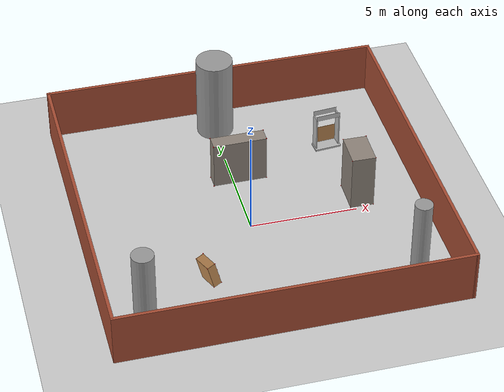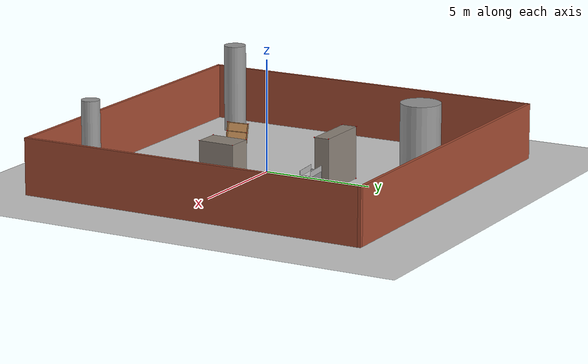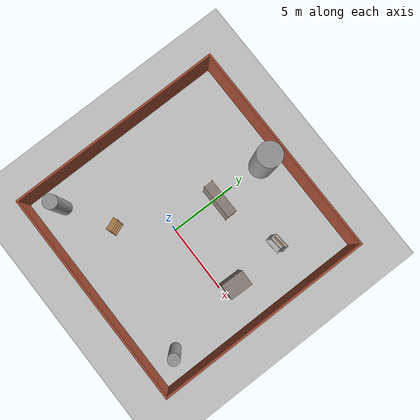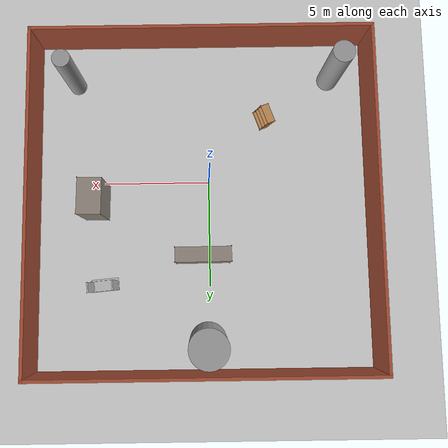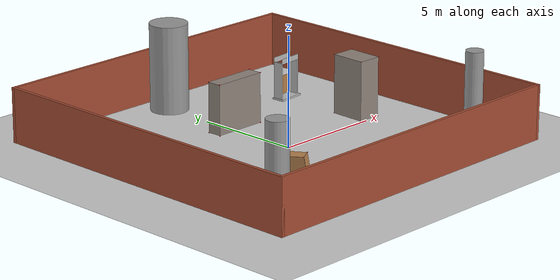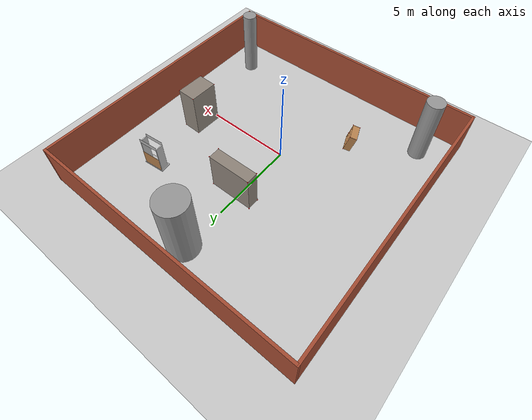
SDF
<sdf version="1.7">
 <world name="tracked_mid360_fastlio_collapse_microdeform_world">
  <model name="ground_plane">
   <static>1</static>
   <link name="link">
    <collision name="collision">
     <laser_retro>24</laser_retro>
     <geometry><plane><normal>0 0 1</normal><size>100 100</size></plane></geometry>
     <surface>
      <contact>
       <collide_bitmask>65535</collide_bitmask>
       <ode><kp>1e+06</kp><kd>10</kd><max_vel>0.05</max_vel><min_depth>0.001</min_depth></ode>
      </contact>
      <friction><ode><mu>2</mu><mu2>1.5</mu2></ode></friction>
     </surface>
     <max_contacts>20</max_contacts>
    </collision>
    <visual name="visual">
     <cast_shadows>0</cast_shadows>
     <geometry><plane><normal>0 0 1</normal><size>100 100</size></plane></geometry>
     <material>
      <script><uri>file://media/materials/scripts/gazebo.material</uri><name>Gazebo/Grey</name></script>
     </material>
    </visual>
   </link>
  </model>
  <model name="lzg_wall">
   <pose>0.279075 0.9789 0 0 -0 0</pose>
   <link name="Wall_4">
    <collision name="Wall_4_Collision">
     <laser_retro>25</laser_retro>
     <geometry><box><size>16 0.15 2.5</size></box></geometry>
     <pose>0 0 1.25 0 -0 0</pose>
    </collision>
    <visual name="Wall_4_Visual">
     <pose>0 0 1.25 0 -0 0</pose>
     <geometry><box><size>16 0.15 2.5</size></box></geometry>
     <material>
      <script><uri>file://media/materials/scripts/gazebo.material</uri><name>Gazebo/Bricks</name></script>
      <ambient>1 1 1 1</ambient>
     </material>
     <meta><layer>0</layer></meta>
    </visual>
    <pose>0 -7.925 0 0 -0 0</pose>
   </link>
   <link name="Wall_5">
    <collision name="Wall_5_Collision">
     <laser_retro>25</laser_retro>
     <geometry><box><size>16 0.15 2.5</size></box></geometry>
     <pose>0 0 1.25 0 -0 0</pose>
    </collision>
    <visual name="Wall_5_Visual">
     <pose>0 0 1.25 0 -0 0</pose>
     <geometry><box><size>16 0.15 2.5</size></box></geometry>
     <material>
      <script><uri>file://media/materials/scripts/gazebo.material</uri><name>Gazebo/Bricks</name></script>
      <ambient>1 1 1 1</ambient>
     </material>
     <meta><layer>0</layer></meta>
    </visual>
    <pose>7.925 0 0 0 -0 1.5708</pose>
   </link>
   <link name="Wall_6">
    <collision name="Wall_6_Collision">
     <laser_retro>25</laser_retro>
     <geometry><box><size>16 0.15 2.5</size></box></geometry>
     <pose>0 0 1.25 0 -0 0</pose>
    </collision>
    <visual name="Wall_6_Visual">
     <pose>0 0 1.25 0 -0 0</pose>
     <geometry><box><size>16 0.15 2.5</size></box></geometry>
     <material>
      <script><uri>file://media/materials/scripts/gazebo.material</uri><name>Gazebo/Bricks</name></script>
      <ambient>1 1 1 1</ambient>
     </material>
     <meta><layer>0</layer></meta>
    </visual>
    <pose>0 7.925 0 0 -0 3.14159</pose>
   </link>
   <link name="Wall_7">
    <collision name="Wall_7_Collision">
     <laser_retro>25</laser_retro>
     <geometry><box><size>16 0.15 2.5</size></box></geometry>
     <pose>0 0 1.25 0 -0 0</pose>
    </collision>
    <visual name="Wall_7_Visual">
     <pose>0 0 1.25 0 -0 0</pose>
     <geometry><box><size>16 0.15 2.5</size></box></geometry>
     <material>
      <script><uri>file://media/materials/scripts/gazebo.material</uri><name>Gazebo/Bricks</name></script>
      <ambient>1 1 1 1</ambient>
     </material>
     <meta><layer>0</layer></meta>
    </visual>
    <pose>-7.925 0 0 0 -0 -1.5708</pose>
   </link>
   <static>1</static>
  </model>
  <model name="frc2016_drawbridge">
   <static>1</static>
   <link name="base">
    <inertial>
     <mass>10</mass>
     <pose>0 0 1 0 -0 0</pose>
     <inertia><ixx>3.64907</ixx><ixy>0</ixy><ixz>0</ixz><iyy>4.67075</iyy><iyz>0</iyz><izz>1.66649</izz></inertia>
    </inertial>
    <visual name="platform">
     <pose>0 0 0.0425 0 -0 0</pose>
     <geometry><box><size>1.27 0.5969 0.085</size></box></geometry>
    </visual>
    <collision name="platform">
     <laser_retro>11</laser_retro>
     <pose>0 0 0.0425 0 -0 0</pose>
     <geometry><box><size>1.27 0.5969 0.085</size></box></geometry>
    </collision>
    <visual name="right_wall">
     <pose>0.55879 0.04444 0.889 0 -0 0</pose>
     <geometry><box><size>0.05715 0.45698 1.77165</size></box></geometry>
    </visual>
    <collision name="right_wall">
     <laser_retro>11</laser_retro>
     <pose>0.55879 0.04444 0.889 0 -0 0</pose>
     <geometry><box><size>0.05715 0.45698 1.77165</size></box></geometry>
    </collision>
    <visual name="left_wall">
     <pose>-0.55879 0.04444 0.889 0 -0 0</pose>
     <geometry><box><size>0.05715 0.45698 1.77165</size></box></geometry>
    </visual>
    <collision name="left_wall">
     <laser_retro>11</laser_retro>
     <pose>-0.55879 0.04444 0.889 0 -0 0</pose>
     <geometry><box><size>0.05715 0.45698 1.77165</size></box></geometry>
    </collision>
    <visual name="front_upper_wall">
     <pose>0 0.27611 1.84286 0 -0 0</pose>
     <geometry><box><size>1.1557 0.006347 0.254</size></box></geometry>
    </visual>
    <collision name="front_upper_wall">
     <laser_retro>11</laser_retro>
     <pose>0 0.27611 1.84286 0 -0 0</pose>
     <geometry><box><size>1.1557 0.006347 0.254</size></box></geometry>
    </collision>
    <visual name="back_upper_wall">
     <pose>0 -0.18722 1.84286 0 -0 0</pose>
     <geometry><box><size>1.1557 0.006347 0.254</size></box></geometry>
    </visual>
    <collision name="back_upper_wall">
     <laser_retro>11</laser_retro>
     <pose>0 -0.18722 1.84286 0 -0 0</pose>
     <geometry><box><size>1.1557 0.006347 0.254</size></box></geometry>
    </collision>
   </link>
   <link name="bridge">
    <pose>0 0.28245 0.50577 0 -0 0</pose>
    <inertial>
     <mass>2</mass>
     <pose>0 -0.28245 -0.50577 0 -0 0</pose>
     <inertia>
      <ixx>0.139361</ixx>
      <ixy>0</ixy>
      <ixz>0</ixz>
      <iyy>0.357088</iyy>
      <iyz>0</iyz>
      <izz>0.217741</izz>
     </inertia>
    </inertial>
    <visual name="visual">
     <geometry><box><size>1.14298 0.006347 0.9144</size></box></geometry>
     <material><script><name>Gazebo/WoodFloor</name><uri>__default__</uri></script></material>
    </visual>
    <collision name="collision">
     <laser_retro>11</laser_retro>
     <geometry><box><size>1.14298 0.006347 0.9144</size></box></geometry>
    </collision>
   </link>
   <joint name="bridge_joint" type="revolute">
    <pose>0 0 -0.4172 0 -0 0</pose>
    <parent>base</parent>
    <child>bridge</child>
    <axis>
     <xyz>1 0 0</xyz>
     <limit><lower>-2</lower><upper>0</upper></limit>
     <dynamics><spring_reference>0</spring_reference><spring_stiffness>0</spring_stiffness></dynamics>
    </axis>
   </joint>
   <pose>4.97332 4.86156 -2.9e-05 0 -0 0.089143</pose>
  </model>
  <model name="bookshelf">
   <static>0</static>
   <link name="link">
    <inertial>
     <mass>1</mass>
     <inertia><ixx>1</ixx><ixy>0</ixy><ixz>0</ixz><iyy>1</iyy><iyz>0</iyz><izz>1</izz></inertia>
    </inertial>
    <collision name="back">
     <laser_retro>10</laser_retro>
     <pose>0 0.005 0.6 0 -0 0</pose>
     <geometry><box><size>0.9 0.01 1.2</size></box></geometry>
    </collision>
    <visual name="visual1">
     <pose>0 0.005 0.6 0 -0 0</pose>
     <geometry><box><size>0.9 0.01 1.2</size></box></geometry>
     <material>
      <script><uri>file://media/materials/scripts/gazebo.material</uri><name>Gazebo/Wood</name></script>
     </material>
    </visual>
    <collision name="left_side">
     <laser_retro>10</laser_retro>
     <pose>0.45 -0.195 0.6 0 -0 0</pose>
     <geometry><box><size>0.02 0.4 1.2</size></box></geometry>
    </collision>
    <visual name="visual2">
     <pose>0.45 -0.195 0.6 0 -0 0</pose>
     <geometry><box><size>0.02 0.4 1.2</size></box></geometry>
     <material>
      <script><uri>file://media/materials/scripts/gazebo.material</uri><name>Gazebo/Wood</name></script>
     </material>
    </visual>
    <collision name="right_side">
     <laser_retro>10</laser_retro>
     <pose>-0.45 -0.195 0.6 0 -0 0</pose>
     <geometry><box><size>0.02 0.4 1.2</size></box></geometry>
    </collision>
    <visual name="visual3">
     <pose>-0.45 -0.195 0.6 0 -0 0</pose>
     <geometry><box><size>0.02 0.4 1.2</size></box></geometry>
     <material>
      <script><uri>file://media/materials/scripts/gazebo.material</uri><name>Gazebo/Wood</name></script>
     </material>
    </visual>
    <collision name="bottom">
     <laser_retro>10</laser_retro>
     <pose>0 -0.195 0.03 0 -0 0</pose>
     <geometry><box><size>0.88 0.4 0.06</size></box></geometry>
    </collision>
    <visual name="visual4">
     <pose>0 -0.195 0.03 0 -0 0</pose>
     <geometry><box><size>0.88 0.4 0.06</size></box></geometry>
     <material>
      <script><uri>file://media/materials/scripts/gazebo.material</uri><name>Gazebo/Wood</name></script>
     </material>
    </visual>
    <collision name="top">
     <laser_retro>10</laser_retro>
     <pose>0 -0.195 1.19 0 -0 0</pose>
     <geometry><box><size>0.88 0.4 0.02</size></box></geometry>
    </collision>
    <visual name="visual5">
     <pose>0 -0.195 1.19 0 -0 0</pose>
     <geometry><box><size>0.88 0.4 0.02</size></box></geometry>
     <material>
      <script><uri>file://media/materials/scripts/gazebo.material</uri><name>Gazebo/Wood</name></script>
     </material>
    </visual>
    <collision name="low_shelf">
     <laser_retro>10</laser_retro>
     <pose>0 -0.195 0.43 0 -0 0</pose>
     <geometry><box><size>0.88 0.4 0.02</size></box></geometry>
    </collision>
    <visual name="visual6">
     <pose>0 -0.195 0.43 0 -0 0</pose>
     <geometry><box><size>0.88 0.4 0.02</size></box></geometry>
     <material>
      <script><uri>file://media/materials/scripts/gazebo.material</uri><name>Gazebo/Wood</name></script>
     </material>
    </visual>
    <collision name="high_shelf">
     <laser_retro>10</laser_retro>
     <pose>0 -0.195 0.8 0 -0 0</pose>
     <geometry><box><size>0.88 0.4 0.02</size></box></geometry>
    </collision>
    <visual name="visual7">
     <pose>0 -0.195 0.8 0 -0 0</pose>
     <geometry><box><size>0.88 0.4 0.02</size></box></geometry>
     <material>
      <script><uri>file://media/materials/scripts/gazebo.material</uri><name>Gazebo/Wood</name></script>
     </material>
    </visual>
    <visual name="ground_truth_marker_v_000">
     <pose>-0.46 -0.395 0 0 -0 0</pose>
     <geometry><sphere><radius>0.02</radius></sphere></geometry>
     <material><ambient>1 0 0 1</ambient><diffuse>1 0 0 1</diffuse><emissive>1 0 0 1</emissive></material>
     <cast_shadows>0</cast_shadows>
    </visual>
    <visual name="ground_truth_marker_v_001">
     <pose>-0.46 -0.395 1.2 0 -0 0</pose>
     <geometry><sphere><radius>0.02</radius></sphere></geometry>
     <material><ambient>1 0 0 1</ambient><diffuse>1 0 0 1</diffuse><emissive>1 0 0 1</emissive></material>
     <cast_shadows>0</cast_shadows>
    </visual>
    <visual name="ground_truth_marker_v_002">
     <pose>0.46 -0.395 0 0 -0 0</pose>
     <geometry><sphere><radius>0.02</radius></sphere></geometry>
     <material><ambient>1 0 0 1</ambient><diffuse>1 0 0 1</diffuse><emissive>1 0 0 1</emissive></material>
     <cast_shadows>0</cast_shadows>
    </visual>
    <visual name="ground_truth_marker_v_003">
     <pose>0.46 -0.395 1.2 0 -0 0</pose>
     <geometry><sphere><radius>0.02</radius></sphere></geometry>
     <material><ambient>1 0 0 1</ambient><diffuse>1 0 0 1</diffuse><emissive>1 0 0 1</emissive></material>
     <cast_shadows>0</cast_shadows>
    </visual>
    <visual name="ground_truth_marker_v_004">
     <pose>-0.45 0.01 0 0 -0 0</pose>
     <geometry><sphere><radius>0.02</radius></sphere></geometry>
     <material><ambient>1 0 0 1</ambient><diffuse>1 0 0 1</diffuse><emissive>1 0 0 1</emissive></material>
     <cast_shadows>0</cast_shadows>
    </visual>
    <visual name="ground_truth_marker_v_005">
     <pose>-0.45 0.01 1.2 0 -0 0</pose>
     <geometry><sphere><radius>0.02</radius></sphere></geometry>
     <material><ambient>1 0 0 1</ambient><diffuse>1 0 0 1</diffuse><emissive>1 0 0 1</emissive></material>
     <cast_shadows>0</cast_shadows>
    </visual>
    <visual name="ground_truth_marker_v_006">
     <pose>0.45 0.01 0 0 -0 0</pose>
     <geometry><sphere><radius>0.02</radius></sphere></geometry>
     <material><ambient>1 0 0 1</ambient><diffuse>1 0 0 1</diffuse><emissive>1 0 0 1</emissive></material>
     <cast_shadows>0</cast_shadows>
    </visual>
    <visual name="ground_truth_marker_v_007">
     <pose>0.45 0.01 1.2 0 -0 0</pose>
     <geometry><sphere><radius>0.02</radius></sphere></geometry>
     <material><ambient>1 0 0 1</ambient><diffuse>1 0 0 1</diffuse><emissive>1 0 0 1</emissive></material>
     <cast_shadows>0</cast_shadows>
    </visual>
    <visual name="ground_truth_marker_v_008">
     <pose>-0.44 -0.395 0.42 0 -0 0</pose>
     <geometry><sphere><radius>0.02</radius></sphere></geometry>
     <material><ambient>1 0 0 1</ambient><diffuse>1 0 0 1</diffuse><emissive>1 0 0 1</emissive></material>
     <cast_shadows>0</cast_shadows>
    </visual>
    <visual name="ground_truth_marker_v_009">
     <pose>-0.44 -0.395 0.44 0 -0 0</pose>
     <geometry><sphere><radius>0.02</radius></sphere></geometry>
     <material><ambient>1 0 0 1</ambient><diffuse>1 0 0 1</diffuse><emissive>1 0 0 1</emissive></material>
     <cast_shadows>0</cast_shadows>
    </visual>
    <visual name="ground_truth_marker_v_010">
     <pose>0.44 -0.395 0.42 0 -0 0</pose>
     <geometry><sphere><radius>0.02</radius></sphere></geometry>
     <material><ambient>1 0 0 1</ambient><diffuse>1 0 0 1</diffuse><emissive>1 0 0 1</emissive></material>
     <cast_shadows>0</cast_shadows>
    </visual>
    <visual name="ground_truth_marker_v_011">
     <pose>0.44 -0.395 0.44 0 -0 0</pose>
     <geometry><sphere><radius>0.02</radius></sphere></geometry>
     <material><ambient>1 0 0 1</ambient><diffuse>1 0 0 1</diffuse><emissive>1 0 0 1</emissive></material>
     <cast_shadows>0</cast_shadows>
    </visual>
    <visual name="ground_truth_marker_v_012">
     <pose>-0.44 -0.395 0.79 0 -0 0</pose>
     <geometry><sphere><radius>0.02</radius></sphere></geometry>
     <material><ambient>1 0 0 1</ambient><diffuse>1 0 0 1</diffuse><emissive>1 0 0 1</emissive></material>
     <cast_shadows>0</cast_shadows>
    </visual>
    <visual name="ground_truth_marker_v_013">
     <pose>-0.44 -0.395 0.81 0 -0 0</pose>
     <geometry><sphere><radius>0.02</radius></sphere></geometry>
     <material><ambient>1 0 0 1</ambient><diffuse>1 0 0 1</diffuse><emissive>1 0 0 1</emissive></material>
     <cast_shadows>0</cast_shadows>
    </visual>
    <visual name="ground_truth_marker_v_014">
     <pose>0.44 -0.395 0.79 0 -0 0</pose>
     <geometry><sphere><radius>0.02</radius></sphere></geometry>
     <material><ambient>1 0 0 1</ambient><diffuse>1 0 0 1</diffuse><emissive>1 0 0 1</emissive></material>
     <cast_shadows>0</cast_shadows>
    </visual>
    <visual name="ground_truth_marker_v_015">
     <pose>0.44 -0.395 0.81 0 -0 0</pose>
     <geometry><sphere><radius>0.02</radius></sphere></geometry>
     <material><ambient>1 0 0 1</ambient><diffuse>1 0 0 1</diffuse><emissive>1 0 0 1</emissive></material>
     <cast_shadows>0</cast_shadows>
    </visual>
    <kinematic>1</kinematic>
   </link>
   <link name="ground_truth_v_000">
    <pose>-0.46 -0.395 0 0 -0 0</pose>
    <inertial>
     <mass>1e-06</mass>
     <inertia><ixx>1e-12</ixx><ixy>0</ixy><ixz>0</ixz><iyy>1e-12</iyy><iyz>0</iyz><izz>1e-12</izz></inertia>
    </inertial>
   </link>
   <link name="ground_truth_v_001">
    <pose>-0.46 -0.395 1.2 0 -0 0</pose>
    <inertial>
     <mass>1e-06</mass>
     <inertia><ixx>1e-12</ixx><ixy>0</ixy><ixz>0</ixz><iyy>1e-12</iyy><iyz>0</iyz><izz>1e-12</izz></inertia>
    </inertial>
   </link>
   <link name="ground_truth_v_002">
    <pose>0.46 -0.395 0 0 -0 0</pose>
    <inertial>
     <mass>1e-06</mass>
     <inertia><ixx>1e-12</ixx><ixy>0</ixy><ixz>0</ixz><iyy>1e-12</iyy><iyz>0</iyz><izz>1e-12</izz></inertia>
    </inertial>
   </link>
   <link name="ground_truth_v_003">
    <pose>0.46 -0.395 1.2 0 -0 0</pose>
    <inertial>
     <mass>1e-06</mass>
     <inertia><ixx>1e-12</ixx><ixy>0</ixy><ixz>0</ixz><iyy>1e-12</iyy><iyz>0</iyz><izz>1e-12</izz></inertia>
    </inertial>
   </link>
   <link name="ground_truth_v_004">
    <pose>-0.45 0.01 0 0 -0 0</pose>
    <inertial>
     <mass>1e-06</mass>
     <inertia><ixx>1e-12</ixx><ixy>0</ixy><ixz>0</ixz><iyy>1e-12</iyy><iyz>0</iyz><izz>1e-12</izz></inertia>
    </inertial>
   </link>
   <link name="ground_truth_v_005">
    <pose>-0.45 0.01 1.2 0 -0 0</pose>
    <inertial>
     <mass>1e-06</mass>
     <inertia><ixx>1e-12</ixx><ixy>0</ixy><ixz>0</ixz><iyy>1e-12</iyy><iyz>0</iyz><izz>1e-12</izz></inertia>
    </inertial>
   </link>
   <link name="ground_truth_v_006">
    <pose>0.45 0.01 0 0 -0 0</pose>
    <inertial>
     <mass>1e-06</mass>
     <inertia><ixx>1e-12</ixx><ixy>0</ixy><ixz>0</ixz><iyy>1e-12</iyy><iyz>0</iyz><izz>1e-12</izz></inertia>
    </inertial>
   </link>
   <link name="ground_truth_v_007">
    <pose>0.45 0.01 1.2 0 -0 0</pose>
    <inertial>
     <mass>1e-06</mass>
     <inertia><ixx>1e-12</ixx><ixy>0</ixy><ixz>0</ixz><iyy>1e-12</iyy><iyz>0</iyz><izz>1e-12</izz></inertia>
    </inertial>
   </link>
   <link name="ground_truth_v_008">
    <pose>-0.44 -0.395 0.42 0 -0 0</pose>
    <inertial>
     <mass>1e-06</mass>
     <inertia><ixx>1e-12</ixx><ixy>0</ixy><ixz>0</ixz><iyy>1e-12</iyy><iyz>0</iyz><izz>1e-12</izz></inertia>
    </inertial>
   </link>
   <link name="ground_truth_v_009">
    <pose>-0.44 -0.395 0.44 0 -0 0</pose>
    <inertial>
     <mass>1e-06</mass>
     <inertia><ixx>1e-12</ixx><ixy>0</ixy><ixz>0</ixz><iyy>1e-12</iyy><iyz>0</iyz><izz>1e-12</izz></inertia>
    </inertial>
   </link>
   <link name="ground_truth_v_010">
    <pose>0.44 -0.395 0.42 0 -0 0</pose>
    <inertial>
     <mass>1e-06</mass>
     <inertia><ixx>1e-12</ixx><ixy>0</ixy><ixz>0</ixz><iyy>1e-12</iyy><iyz>0</iyz><izz>1e-12</izz></inertia>
    </inertial>
   </link>
   <link name="ground_truth_v_011">
    <pose>0.44 -0.395 0.44 0 -0 0</pose>
    <inertial>
     <mass>1e-06</mass>
     <inertia><ixx>1e-12</ixx><ixy>0</ixy><ixz>0</ixz><iyy>1e-12</iyy><iyz>0</iyz><izz>1e-12</izz></inertia>
    </inertial>
   </link>
   <link name="ground_truth_v_012">
    <pose>-0.44 -0.395 0.79 0 -0 0</pose>
    <inertial>
     <mass>1e-06</mass>
     <inertia><ixx>1e-12</ixx><ixy>0</ixy><ixz>0</ixz><iyy>1e-12</iyy><iyz>0</iyz><izz>1e-12</izz></inertia>
    </inertial>
   </link>
   <link name="ground_truth_v_013">
    <pose>-0.44 -0.395 0.81 0 -0 0</pose>
    <inertial>
     <mass>1e-06</mass>
     <inertia><ixx>1e-12</ixx><ixy>0</ixy><ixz>0</ixz><iyy>1e-12</iyy><iyz>0</iyz><izz>1e-12</izz></inertia>
    </inertial>
   </link>
   <link name="ground_truth_v_014">
    <pose>0.44 -0.395 0.79 0 -0 0</pose>
    <inertial>
     <mass>1e-06</mass>
     <inertia><ixx>1e-12</ixx><ixy>0</ixy><ixz>0</ixz><iyy>1e-12</iyy><iyz>0</iyz><izz>1e-12</izz></inertia>
    </inertial>
   </link>
   <link name="ground_truth_v_015">
    <pose>0.44 -0.395 0.81 0 -0 0</pose>
    <inertial>
     <mass>1e-06</mass>
     <inertia><ixx>1e-12</ixx><ixy>0</ixy><ixz>0</ixz><iyy>1e-12</iyy><iyz>0</iyz><izz>1e-12</izz></inertia>
    </inertial>
   </link>
   <joint name="ground_truth_v_000_fixed_joint" type="fixed">
    <parent>link</parent>
    <child>ground_truth_v_000</child>
   </joint>
   <joint name="ground_truth_v_001_fixed_joint" type="fixed">
    <parent>link</parent>
    <child>ground_truth_v_001</child>
   </joint>
   <joint name="ground_truth_v_002_fixed_joint" type="fixed">
    <parent>link</parent>
    <child>ground_truth_v_002</child>
   </joint>
   <joint name="ground_truth_v_003_fixed_joint" type="fixed">
    <parent>link</parent>
    <child>ground_truth_v_003</child>
   </joint>
   <joint name="ground_truth_v_004_fixed_joint" type="fixed">
    <parent>link</parent>
    <child>ground_truth_v_004</child>
   </joint>
   <joint name="ground_truth_v_005_fixed_joint" type="fixed">
    <parent>link</parent>
    <child>ground_truth_v_005</child>
   </joint>
   <joint name="ground_truth_v_006_fixed_joint" type="fixed">
    <parent>link</parent>
    <child>ground_truth_v_006</child>
   </joint>
   <joint name="ground_truth_v_007_fixed_joint" type="fixed">
    <parent>link</parent>
    <child>ground_truth_v_007</child>
   </joint>
   <joint name="ground_truth_v_008_fixed_joint" type="fixed">
    <parent>link</parent>
    <child>ground_truth_v_008</child>
   </joint>
   <joint name="ground_truth_v_009_fixed_joint" type="fixed">
    <parent>link</parent>
    <child>ground_truth_v_009</child>
   </joint>
   <joint name="ground_truth_v_010_fixed_joint" type="fixed">
    <parent>link</parent>
    <child>ground_truth_v_010</child>
   </joint>
   <joint name="ground_truth_v_011_fixed_joint" type="fixed">
    <parent>link</parent>
    <child>ground_truth_v_011</child>
   </joint>
   <joint name="ground_truth_v_012_fixed_joint" type="fixed">
    <parent>link</parent>
    <child>ground_truth_v_012</child>
   </joint>
   <joint name="ground_truth_v_013_fixed_joint" type="fixed">
    <parent>link</parent>
    <child>ground_truth_v_013</child>
   </joint>
   <joint name="ground_truth_v_014_fixed_joint" type="fixed">
    <parent>link</parent>
    <child>ground_truth_v_014</child>
   </joint>
   <joint name="ground_truth_v_015_fixed_joint" type="fixed">
    <parent>link</parent>
    <child>ground_truth_v_015</child>
   </joint>
   <pose>-2.73269 -3.15697 0 -0.229313 0.074467 1.93675</pose>
  </model>
  <model name="lzg_three_zhuzi">
   <link name="link_2">
    <inertial>
     <mass>2.62922</mass>
     <inertia><ixx>3.61255</ixx><ixy>0</ixy><ixz>0</ixz><iyy>3.61255</iyy><iyz>0</iyz><izz>0.216046</izz></inertia>
    </inertial>
    <pose>6.19023 -4.08731 0.013797 0 -0 0</pose>
    <visual name="visual">
     <geometry><cylinder><radius>0.405391</radius><length>3.99937</length></cylinder></geometry>
     <material>
      <lighting>1</lighting>
      <script><uri>file://media/materials/scripts/gazebo.material</uri><name>Gazebo/Grey</name></script>
      <shader type="pixel"/>
     </material>
    </visual>
    <collision name="collision">
     <laser_retro>16</laser_retro>
     <geometry><cylinder><radius>0.405391</radius><length>3.99937</length></cylinder></geometry>
     <surface>
      <friction>
       <ode><mu>1</mu><mu2>1</mu2><fdir1>0 0 0</fdir1><slip1>0</slip1><slip2>0</slip2></ode>
       <torsional>
        <coefficient>1</coefficient>
        <patch_radius>0</patch_radius>
        <surface_radius>0</surface_radius>
        <use_patch_radius>1</use_patch_radius>
        <ode><slip>0</slip></ode>
       </torsional>
      </friction>
      <bounce><restitution_coefficient>0</restitution_coefficient><threshold>1e+06</threshold></bounce>
      <contact>
       <collide_without_contact>0</collide_without_contact>
       <collide_without_contact_bitmask>1</collide_without_contact_bitmask>
       <collide_bitmask>1</collide_bitmask>
       <ode>
        <soft_cfm>0</soft_cfm>
        <soft_erp>0.2</soft_erp>
        <kp>1e+13</kp>
        <kd>1</kd>
        <max_vel>0.01</max_vel>
        <min_depth>0</min_depth>
       </ode>
       <bullet>
        <split_impulse>1</split_impulse>
        <split_impulse_penetration_threshold>-0.01</split_impulse_penetration_threshold>
        <soft_cfm>0</soft_cfm>
        <soft_erp>0.2</soft_erp>
        <kp>1e+13</kp>
        <kd>1</kd>
       </bullet>
      </contact>
     </surface>
    </collision>
   </link>
   <link name="link_3">
    <inertial>
     <mass>3.987</mass>
     <inertia><ixx>5.53074</ixx><ixy>0</ixy><ixz>0</ixz><iyy>5.53074</iyy><iyz>0</iyz><izz>0.498376</izz></inertia>
    </inertial>
    <pose>-6.12607 -4.24219 -0.006898 0 -0 0</pose>
    <visual name="visual">
     <geometry><cylinder><radius>0.5</radius><length>3.98702</length></cylinder></geometry>
     <material>
      <lighting>1</lighting>
      <script><uri>file://media/materials/scripts/gazebo.material</uri><name>Gazebo/Grey</name></script>
      <shader type="pixel"/>
     </material>
    </visual>
    <collision name="collision">
     <laser_retro>16</laser_retro>
     <geometry><cylinder><radius>0.5</radius><length>3.98702</length></cylinder></geometry>
     <surface>
      <friction>
       <ode><mu>1</mu><mu2>1</mu2><fdir1>0 0 0</fdir1><slip1>0</slip1><slip2>0</slip2></ode>
       <torsional>
        <coefficient>1</coefficient>
        <patch_radius>0</patch_radius>
        <surface_radius>0</surface_radius>
        <use_patch_radius>1</use_patch_radius>
        <ode><slip>0</slip></ode>
       </torsional>
      </friction>
      <bounce><restitution_coefficient>0</restitution_coefficient><threshold>1e+06</threshold></bounce>
      <contact>
       <collide_without_contact>0</collide_without_contact>
       <collide_without_contact_bitmask>1</collide_without_contact_bitmask>
       <collide_bitmask>1</collide_bitmask>
       <ode>
        <soft_cfm>0</soft_cfm>
        <soft_erp>0.2</soft_erp>
        <kp>1e+13</kp>
        <kd>1</kd>
        <max_vel>0.01</max_vel>
        <min_depth>0</min_depth>
       </ode>
       <bullet>
        <split_impulse>1</split_impulse>
        <split_impulse_penetration_threshold>-0.01</split_impulse_penetration_threshold>
        <soft_cfm>0</soft_cfm>
        <soft_erp>0.2</soft_erp>
        <kp>1e+13</kp>
        <kd>1</kd>
       </bullet>
      </contact>
     </surface>
    </collision>
   </link>
   <link name="link_4">
    <inertial>
     <mass>12.4423</mass>
     <inertia><ixx>19.7027</ixx><ixy>0</ixy><ixz>0</ixz><iyy>19.7027</iyy><iyz>0</iyz><izz>4.73222</izz></inertia>
    </inertial>
    <pose>-0.064156 8.3295 -0.006898 0 -0 0</pose>
    <visual name="visual">
     <geometry><cylinder><radius>0.872163</radius><length>4.08905</length></cylinder></geometry>
     <material>
      <lighting>1</lighting>
      <script><uri>file://media/materials/scripts/gazebo.material</uri><name>Gazebo/Grey</name></script>
      <shader type="pixel"/>
     </material>
    </visual>
    <collision name="collision">
     <laser_retro>16</laser_retro>
     <geometry><cylinder><radius>0.872163</radius><length>4.08905</length></cylinder></geometry>
     <surface>
      <friction>
       <ode><mu>1</mu><mu2>1</mu2><fdir1>0 0 0</fdir1><slip1>0</slip1><slip2>0</slip2></ode>
       <torsional>
        <coefficient>1</coefficient>
        <patch_radius>0</patch_radius>
        <surface_radius>0</surface_radius>
        <use_patch_radius>1</use_patch_radius>
        <ode><slip>0</slip></ode>
       </torsional>
      </friction>
      <bounce><restitution_coefficient>0</restitution_coefficient><threshold>1e+06</threshold></bounce>
      <contact>
       <collide_without_contact>0</collide_without_contact>
       <collide_without_contact_bitmask>1</collide_without_contact_bitmask>
       <collide_bitmask>1</collide_bitmask>
       <ode>
        <soft_cfm>0</soft_cfm>
        <soft_erp>0.2</soft_erp>
        <kp>1e+13</kp>
        <kd>1</kd>
        <max_vel>0.01</max_vel>
        <min_depth>0</min_depth>
       </ode>
       <bullet>
        <split_impulse>1</split_impulse>
        <split_impulse_penetration_threshold>-0.01</split_impulse_penetration_threshold>
        <soft_cfm>0</soft_cfm>
        <soft_erp>0.2</soft_erp>
        <kp>1e+13</kp>
        <kd>1</kd>
       </bullet>
      </contact>
     </surface>
    </collision>
   </link>
   <static>1</static>
   <allow_auto_disable>0</allow_auto_disable>
   <pose>0.1888 -0.82606 1.98588 0 -0 0</pose>
  </model>
  <model name="model_02">
   <link name="link">
    <visual name="ground_truth_marker_v_000">
     <pose>-0.55 -0.816605 -1.37167 0 -0 0</pose>
     <geometry><sphere><radius>0.02</radius></sphere></geometry>
     <material><ambient>1 0 0 1</ambient><diffuse>1 0 0 1</diffuse><emissive>1 0 0 1</emissive></material>
     <cast_shadows>0</cast_shadows>
    </visual>
    <visual name="ground_truth_marker_v_001">
     <pose>-0.55 -0.816605 1.37167 0 -0 0</pose>
     <geometry><sphere><radius>0.02</radius></sphere></geometry>
     <material><ambient>1 0 0 1</ambient><diffuse>1 0 0 1</diffuse><emissive>1 0 0 1</emissive></material>
     <cast_shadows>0</cast_shadows>
    </visual>
    <visual name="ground_truth_marker_v_002">
     <pose>-0.55 0.816605 -1.37167 0 -0 0</pose>
     <geometry><sphere><radius>0.02</radius></sphere></geometry>
     <material><ambient>1 0 0 1</ambient><diffuse>1 0 0 1</diffuse><emissive>1 0 0 1</emissive></material>
     <cast_shadows>0</cast_shadows>
    </visual>
    <visual name="ground_truth_marker_v_003">
     <pose>-0.55 0.816605 1.37167 0 -0 0</pose>
     <geometry><sphere><radius>0.02</radius></sphere></geometry>
     <material><ambient>1 0 0 1</ambient><diffuse>1 0 0 1</diffuse><emissive>1 0 0 1</emissive></material>
     <cast_shadows>0</cast_shadows>
    </visual>
    <visual name="ground_truth_marker_v_004">
     <pose>0.55 -0.816605 -1.37167 0 -0 0</pose>
     <geometry><sphere><radius>0.02</radius></sphere></geometry>
     <material><ambient>1 0 0 1</ambient><diffuse>1 0 0 1</diffuse><emissive>1 0 0 1</emissive></material>
     <cast_shadows>0</cast_shadows>
    </visual>
    <visual name="ground_truth_marker_v_005">
     <pose>0.55 -0.816605 1.37167 0 -0 0</pose>
     <geometry><sphere><radius>0.02</radius></sphere></geometry>
     <material><ambient>1 0 0 1</ambient><diffuse>1 0 0 1</diffuse><emissive>1 0 0 1</emissive></material>
     <cast_shadows>0</cast_shadows>
    </visual>
    <visual name="ground_truth_marker_v_006">
     <pose>0.55 0.816605 -1.37167 0 -0 0</pose>
     <geometry><sphere><radius>0.02</radius></sphere></geometry>
     <material><ambient>1 0 0 1</ambient><diffuse>1 0 0 1</diffuse><emissive>1 0 0 1</emissive></material>
     <cast_shadows>0</cast_shadows>
    </visual>
    <visual name="ground_truth_marker_v_007">
     <pose>0.55 0.816605 1.37167 0 -0 0</pose>
     <geometry><sphere><radius>0.02</radius></sphere></geometry>
     <material><ambient>1 0 0 1</ambient><diffuse>1 0 0 1</diffuse><emissive>1 0 0 1</emissive></material>
     <cast_shadows>0</cast_shadows>
    </visual>
    <kinematic>1</kinematic>
    <inertial>
     <inertia><ixx>2.02169</ixx><ixy>0</ixy><ixz>0</ixz><iyy>1.73264</iyy><iyz>0</iyz><izz>0.769022</izz></inertia>
     <mass>2.38003</mass>
    </inertial>
    <visual name="visual">
     <geometry><box><size>1.1 1.63321 2.74334</size></box></geometry>
     <material>
      <ambient>0.5 0.46 0.42 1</ambient>
      <diffuse>0.56 0.52 0.48 1</diffuse>
      <shader type="pixel"/>
      <script><name>ModelPreview_4::link::visual_MATERIAL_</name><uri>__default__</uri></script>
     </material>
    </visual>
    <collision name="collision">
     <laser_retro>3</laser_retro>
     <geometry><box><size>1.1 1.63321 2.74334</size></box></geometry>
     <surface>
      <friction>
       <ode><mu>1</mu><mu2>1</mu2><fdir1>0 0 0</fdir1><slip1>0</slip1><slip2>0</slip2></ode>
       <torsional>
        <coefficient>1</coefficient>
        <patch_radius>0</patch_radius>
        <surface_radius>0</surface_radius>
        <use_patch_radius>1</use_patch_radius>
        <ode><slip>0</slip></ode>
       </torsional>
      </friction>
      <bounce><restitution_coefficient>0</restitution_coefficient><threshold>1e+06</threshold></bounce>
      <contact>
       <collide_without_contact>0</collide_without_contact>
       <collide_without_contact_bitmask>1</collide_without_contact_bitmask>
       <collide_bitmask>1</collide_bitmask>
       <ode>
        <soft_cfm>0</soft_cfm>
        <soft_erp>0.2</soft_erp>
        <kp>1e+06</kp>
        <kd>10</kd>
        <max_vel>0.01</max_vel>
        <min_depth>0</min_depth>
       </ode>
       <bullet>
        <split_impulse>1</split_impulse>
        <split_impulse_penetration_threshold>-0.01</split_impulse_penetration_threshold>
        <soft_cfm>0</soft_cfm>
        <soft_erp>0.2</soft_erp>
        <kp>1e+06</kp>
        <kd>10</kd>
       </bullet>
      </contact>
     </surface>
    </collision>
   </link>
   <link name="ground_truth_v_000">
    <pose>-0.55 -0.816605 -1.37167 0 -0 0</pose>
    <inertial>
     <mass>1e-06</mass>
     <inertia><ixx>1e-12</ixx><ixy>0</ixy><ixz>0</ixz><iyy>1e-12</iyy><iyz>0</iyz><izz>1e-12</izz></inertia>
    </inertial>
   </link>
   <link name="ground_truth_v_001">
    <pose>-0.55 -0.816605 1.37167 0 -0 0</pose>
    <inertial>
     <mass>1e-06</mass>
     <inertia><ixx>1e-12</ixx><ixy>0</ixy><ixz>0</ixz><iyy>1e-12</iyy><iyz>0</iyz><izz>1e-12</izz></inertia>
    </inertial>
   </link>
   <link name="ground_truth_v_002">
    <pose>-0.55 0.816605 -1.37167 0 -0 0</pose>
    <inertial>
     <mass>1e-06</mass>
     <inertia><ixx>1e-12</ixx><ixy>0</ixy><ixz>0</ixz><iyy>1e-12</iyy><iyz>0</iyz><izz>1e-12</izz></inertia>
    </inertial>
   </link>
   <link name="ground_truth_v_003">
    <pose>-0.55 0.816605 1.37167 0 -0 0</pose>
    <inertial>
     <mass>1e-06</mass>
     <inertia><ixx>1e-12</ixx><ixy>0</ixy><ixz>0</ixz><iyy>1e-12</iyy><iyz>0</iyz><izz>1e-12</izz></inertia>
    </inertial>
   </link>
   <link name="ground_truth_v_004">
    <pose>0.55 -0.816605 -1.37167 0 -0 0</pose>
    <inertial>
     <mass>1e-06</mass>
     <inertia><ixx>1e-12</ixx><ixy>0</ixy><ixz>0</ixz><iyy>1e-12</iyy><iyz>0</iyz><izz>1e-12</izz></inertia>
    </inertial>
   </link>
   <link name="ground_truth_v_005">
    <pose>0.55 -0.816605 1.37167 0 -0 0</pose>
    <inertial>
     <mass>1e-06</mass>
     <inertia><ixx>1e-12</ixx><ixy>0</ixy><ixz>0</ixz><iyy>1e-12</iyy><iyz>0</iyz><izz>1e-12</izz></inertia>
    </inertial>
   </link>
   <link name="ground_truth_v_006">
    <pose>0.55 0.816605 -1.37167 0 -0 0</pose>
    <inertial>
     <mass>1e-06</mass>
     <inertia><ixx>1e-12</ixx><ixy>0</ixy><ixz>0</ixz><iyy>1e-12</iyy><iyz>0</iyz><izz>1e-12</izz></inertia>
    </inertial>
   </link>
   <link name="ground_truth_v_007">
    <pose>0.55 0.816605 1.37167 0 -0 0</pose>
    <inertial>
     <mass>1e-06</mass>
     <inertia><ixx>1e-12</ixx><ixy>0</ixy><ixz>0</ixz><iyy>1e-12</iyy><iyz>0</iyz><izz>1e-12</izz></inertia>
    </inertial>
   </link>
   <joint name="ground_truth_v_000_fixed_joint" type="fixed">
    <parent>link</parent>
    <child>ground_truth_v_000</child>
   </joint>
   <joint name="ground_truth_v_001_fixed_joint" type="fixed">
    <parent>link</parent>
    <child>ground_truth_v_001</child>
   </joint>
   <joint name="ground_truth_v_002_fixed_joint" type="fixed">
    <parent>link</parent>
    <child>ground_truth_v_002</child>
   </joint>
   <joint name="ground_truth_v_003_fixed_joint" type="fixed">
    <parent>link</parent>
    <child>ground_truth_v_003</child>
   </joint>
   <joint name="ground_truth_v_004_fixed_joint" type="fixed">
    <parent>link</parent>
    <child>ground_truth_v_004</child>
   </joint>
   <joint name="ground_truth_v_005_fixed_joint" type="fixed">
    <parent>link</parent>
    <child>ground_truth_v_005</child>
   </joint>
   <joint name="ground_truth_v_006_fixed_joint" type="fixed">
    <parent>link</parent>
    <child>ground_truth_v_006</child>
   </joint>
   <joint name="ground_truth_v_007_fixed_joint" type="fixed">
    <parent>link</parent>
    <child>ground_truth_v_007</child>
   </joint>
   <static>0</static>
   <allow_auto_disable>0</allow_auto_disable>
   <pose>5.33528 0.938749 1.37154 5e-06 1e-06 -0.022944</pose>
  </model>
  <model name="model_01">
   <link name="link">
    <enable_wind>1</enable_wind>
    <kinematic>1</kinematic>
    <inertial>
     <inertia><ixx>1.24401</ixx><ixy>0</ixy><ixz>0</ixz><iyy>2.52126</iyy><iyz>0</iyz><izz>1.4739</izz></inertia>
     <mass>2.57454</mass>
    </inertial>
    <visual name="ground_truth_marker_v_000">
     <pose>-1.266055 -0.3384855 -1.15543 0 -0 0</pose>
     <geometry><sphere><radius>0.0259831</radius></sphere></geometry>
     <material>
      <ambient>1 0 0 1</ambient>
      <diffuse>1 0 0 1</diffuse>
      <emissive>1 0 0 1</emissive>
      <shader type="pixel"/>
      <script><name>ModelPreview_1::link::ground_truth_marker_v_000_MATERIAL_</name><uri>__default__</uri></script>
     </material>
     <cast_shadows>0</cast_shadows>
    </visual>
    <visual name="ground_truth_marker_v_001">
     <pose>-1.266055 -0.3384855 1.15543 0 -0 0</pose>
     <geometry><sphere><radius>0.0259831</radius></sphere></geometry>
     <material>
      <ambient>1 0 0 1</ambient>
      <diffuse>1 0 0 1</diffuse>
      <emissive>1 0 0 1</emissive>
      <shader type="pixel"/>
      <script><name>ModelPreview_1::link::ground_truth_marker_v_001_MATERIAL_</name><uri>__default__</uri></script>
     </material>
     <cast_shadows>0</cast_shadows>
    </visual>
    <visual name="ground_truth_marker_v_002">
     <pose>-1.266055 0.3384855 -1.15543 0 -0 0</pose>
     <geometry><sphere><radius>0.0259831</radius></sphere></geometry>
     <material>
      <ambient>1 0 0 1</ambient>
      <diffuse>1 0 0 1</diffuse>
      <emissive>1 0 0 1</emissive>
      <shader type="pixel"/>
      <script><name>ModelPreview_1::link::ground_truth_marker_v_002_MATERIAL_</name><uri>__default__</uri></script>
     </material>
     <cast_shadows>0</cast_shadows>
    </visual>
    <visual name="ground_truth_marker_v_003">
     <pose>-1.266055 0.3384855 1.15543 0 -0 0</pose>
     <geometry><sphere><radius>0.0259831</radius></sphere></geometry>
     <material>
      <ambient>1 0 0 1</ambient>
      <diffuse>1 0 0 1</diffuse>
      <emissive>1 0 0 1</emissive>
      <shader type="pixel"/>
      <script><name>ModelPreview_1::link::ground_truth_marker_v_003_MATERIAL_</name><uri>__default__</uri></script>
     </material>
     <cast_shadows>0</cast_shadows>
    </visual>
    <visual name="ground_truth_marker_v_004">
     <pose>1.266055 -0.3384855 -1.15543 0 -0 0</pose>
     <geometry><sphere><radius>0.0259831</radius></sphere></geometry>
     <material>
      <ambient>1 0 0 1</ambient>
      <diffuse>1 0 0 1</diffuse>
      <emissive>1 0 0 1</emissive>
      <shader type="pixel"/>
      <script><name>ModelPreview_1::link::ground_truth_marker_v_004_MATERIAL_</name><uri>__default__</uri></script>
     </material>
     <cast_shadows>0</cast_shadows>
    </visual>
    <visual name="ground_truth_marker_v_005">
     <pose>1.266055 -0.3384855 1.15543 0 -0 0</pose>
     <geometry><sphere><radius>0.0259831</radius></sphere></geometry>
     <material>
      <ambient>1 0 0 1</ambient>
      <diffuse>1 0 0 1</diffuse>
      <emissive>1 0 0 1</emissive>
      <shader type="pixel"/>
      <script><name>ModelPreview_1::link::ground_truth_marker_v_005_MATERIAL_</name><uri>__default__</uri></script>
     </material>
     <cast_shadows>0</cast_shadows>
    </visual>
    <visual name="ground_truth_marker_v_006">
     <pose>1.266055 0.3384855 -1.15543 0 -0 0</pose>
     <geometry><sphere><radius>0.0259831</radius></sphere></geometry>
     <material>
      <ambient>1 0 0 1</ambient>
      <diffuse>1 0 0 1</diffuse>
      <emissive>1 0 0 1</emissive>
      <shader type="pixel"/>
      <script><name>ModelPreview_1::link::ground_truth_marker_v_006_MATERIAL_</name><uri>__default__</uri></script>
     </material>
     <cast_shadows>0</cast_shadows>
    </visual>
    <visual name="ground_truth_marker_v_007">
     <pose>1.266055 0.3384855 1.15543 0 -0 0</pose>
     <geometry><sphere><radius>0.0259831</radius></sphere></geometry>
     <material>
      <ambient>1 0 0 1</ambient>
      <diffuse>1 0 0 1</diffuse>
      <emissive>1 0 0 1</emissive>
      <shader type="pixel"/>
      <script><name>ModelPreview_1::link::ground_truth_marker_v_007_MATERIAL_</name><uri>__default__</uri></script>
     </material>
     <cast_shadows>0</cast_shadows>
    </visual>
    <visual name="visual">
     <geometry><box><size>2.53211 0.676971 2.31086</size></box></geometry>
     <material>
      <ambient>0.5 0.46 0.42 1</ambient>
      <diffuse>0.56 0.52 0.48 1</diffuse>
      <shader type="pixel"/>
      <script><name>ModelPreview_1::link::visual_MATERIAL_</name><uri>__default__</uri></script>
     </material>
    </visual>
    <collision name="collision">
     <laser_retro>2</laser_retro>
     <geometry><box><size>2.53211 0.676971 2.31086</size></box></geometry>
     <surface>
      <friction>
       <ode><mu>1</mu><mu2>1</mu2><fdir1>0 0 0</fdir1><slip1>0</slip1><slip2>0</slip2></ode>
       <torsional>
        <coefficient>1</coefficient>
        <patch_radius>0</patch_radius>
        <surface_radius>0</surface_radius>
        <use_patch_radius>1</use_patch_radius>
        <ode><slip>0</slip></ode>
       </torsional>
      </friction>
      <bounce><restitution_coefficient>0</restitution_coefficient><threshold>1e+06</threshold></bounce>
      <contact>
       <collide_without_contact>0</collide_without_contact>
       <collide_without_contact_bitmask>1</collide_without_contact_bitmask>
       <collide_bitmask>1</collide_bitmask>
       <ode>
        <soft_cfm>0</soft_cfm>
        <soft_erp>0.2</soft_erp>
        <kp>1e+06</kp>
        <kd>10</kd>
        <max_vel>0.01</max_vel>
        <min_depth>0</min_depth>
       </ode>
       <bullet>
        <split_impulse>1</split_impulse>
        <split_impulse_penetration_threshold>-0.01</split_impulse_penetration_threshold>
        <soft_cfm>0</soft_cfm>
        <soft_erp>0.2</soft_erp>
        <kp>1e+06</kp>
        <kd>10</kd>
       </bullet>
      </contact>
     </surface>
    </collision>
   </link>
   <link name="ground_truth_v_000">
    <pose>-1.266055 -0.3384855 -1.15543 0 -0 0</pose>
    <inertial>
     <mass>1e-06</mass>
     <inertia><ixx>1e-12</ixx><ixy>0</ixy><ixz>0</ixz><iyy>1e-12</iyy><iyz>0</iyz><izz>1e-12</izz></inertia>
    </inertial>
   </link>
   <link name="ground_truth_v_001">
    <pose>-1.266055 -0.3384855 1.15543 0 -0 0</pose>
    <inertial>
     <mass>1e-06</mass>
     <inertia><ixx>1e-12</ixx><ixy>0</ixy><ixz>0</ixz><iyy>1e-12</iyy><iyz>0</iyz><izz>1e-12</izz></inertia>
    </inertial>
   </link>
   <link name="ground_truth_v_002">
    <pose>-1.266055 0.3384855 -1.15543 0 -0 0</pose>
    <inertial>
     <mass>1e-06</mass>
     <inertia><ixx>1e-12</ixx><ixy>0</ixy><ixz>0</ixz><iyy>1e-12</iyy><iyz>0</iyz><izz>1e-12</izz></inertia>
    </inertial>
   </link>
   <link name="ground_truth_v_003">
    <pose>-1.266055 0.3384855 1.15543 0 -0 0</pose>
    <inertial>
     <mass>1e-06</mass>
     <inertia><ixx>1e-12</ixx><ixy>0</ixy><ixz>0</ixz><iyy>1e-12</iyy><iyz>0</iyz><izz>1e-12</izz></inertia>
    </inertial>
   </link>
   <link name="ground_truth_v_004">
    <pose>1.266055 -0.3384855 -1.15543 0 -0 0</pose>
    <inertial>
     <mass>1e-06</mass>
     <inertia><ixx>1e-12</ixx><ixy>0</ixy><ixz>0</ixz><iyy>1e-12</iyy><iyz>0</iyz><izz>1e-12</izz></inertia>
    </inertial>
   </link>
   <link name="ground_truth_v_005">
    <pose>1.266055 -0.3384855 1.15543 0 -0 0</pose>
    <inertial>
     <mass>1e-06</mass>
     <inertia><ixx>1e-12</ixx><ixy>0</ixy><ixz>0</ixz><iyy>1e-12</iyy><iyz>0</iyz><izz>1e-12</izz></inertia>
    </inertial>
   </link>
   <link name="ground_truth_v_006">
    <pose>1.266055 0.3384855 -1.15543 0 -0 0</pose>
    <inertial>
     <mass>1e-06</mass>
     <inertia><ixx>1e-12</ixx><ixy>0</ixy><ixz>0</ixz><iyy>1e-12</iyy><iyz>0</iyz><izz>1e-12</izz></inertia>
    </inertial>
   </link>
   <link name="ground_truth_v_007">
    <pose>1.266055 0.3384855 1.15543 0 -0 0</pose>
    <inertial>
     <mass>1e-06</mass>
     <inertia><ixx>1e-12</ixx><ixy>0</ixy><ixz>0</ixz><iyy>1e-12</iyy><iyz>0</iyz><izz>1e-12</izz></inertia>
    </inertial>
   </link>
   <joint name="ground_truth_v_000_fixed_joint" type="fixed">
    <parent>link</parent>
    <child>ground_truth_v_000</child>
    <physics>
     <ode><limit><cfm>0</cfm><erp>0.2</erp></limit><suspension><cfm>0</cfm><erp>0.2</erp></suspension></ode>
    </physics>
   </joint>
   <joint name="ground_truth_v_001_fixed_joint" type="fixed">
    <parent>link</parent>
    <child>ground_truth_v_001</child>
    <physics>
     <ode><limit><cfm>0</cfm><erp>0.2</erp></limit><suspension><cfm>0</cfm><erp>0.2</erp></suspension></ode>
    </physics>
   </joint>
   <joint name="ground_truth_v_002_fixed_joint" type="fixed">
    <parent>link</parent>
    <child>ground_truth_v_002</child>
    <physics>
     <ode><limit><cfm>0</cfm><erp>0.2</erp></limit><suspension><cfm>0</cfm><erp>0.2</erp></suspension></ode>
    </physics>
   </joint>
   <joint name="ground_truth_v_003_fixed_joint" type="fixed">
    <parent>link</parent>
    <child>ground_truth_v_003</child>
    <physics>
     <ode><limit><cfm>0</cfm><erp>0.2</erp></limit><suspension><cfm>0</cfm><erp>0.2</erp></suspension></ode>
    </physics>
   </joint>
   <joint name="ground_truth_v_004_fixed_joint" type="fixed">
    <parent>link</parent>
    <child>ground_truth_v_004</child>
    <physics>
     <ode><limit><cfm>0</cfm><erp>0.2</erp></limit><suspension><cfm>0</cfm><erp>0.2</erp></suspension></ode>
    </physics>
   </joint>
   <joint name="ground_truth_v_005_fixed_joint" type="fixed">
    <parent>link</parent>
    <child>ground_truth_v_005</child>
    <physics>
     <ode><limit><cfm>0</cfm><erp>0.2</erp></limit><suspension><cfm>0</cfm><erp>0.2</erp></suspension></ode>
    </physics>
   </joint>
   <joint name="ground_truth_v_006_fixed_joint" type="fixed">
    <parent>link</parent>
    <child>ground_truth_v_006</child>
    <physics>
     <ode><limit><cfm>0</cfm><erp>0.2</erp></limit><suspension><cfm>0</cfm><erp>0.2</erp></suspension></ode>
    </physics>
   </joint>
   <joint name="ground_truth_v_007_fixed_joint" type="fixed">
    <parent>link</parent>
    <child>ground_truth_v_007</child>
    <physics>
     <ode><limit><cfm>0</cfm><erp>0.2</erp></limit><suspension><cfm>0</cfm><erp>0.2</erp></suspension></ode>
    </physics>
   </joint>
   <static>0</static>
   <allow_auto_disable>0</allow_auto_disable>
   <pose>0.314496 3.55309 1.15543 0 -0 0.006691</pose>
  </model>
 </world>
</sdf>
